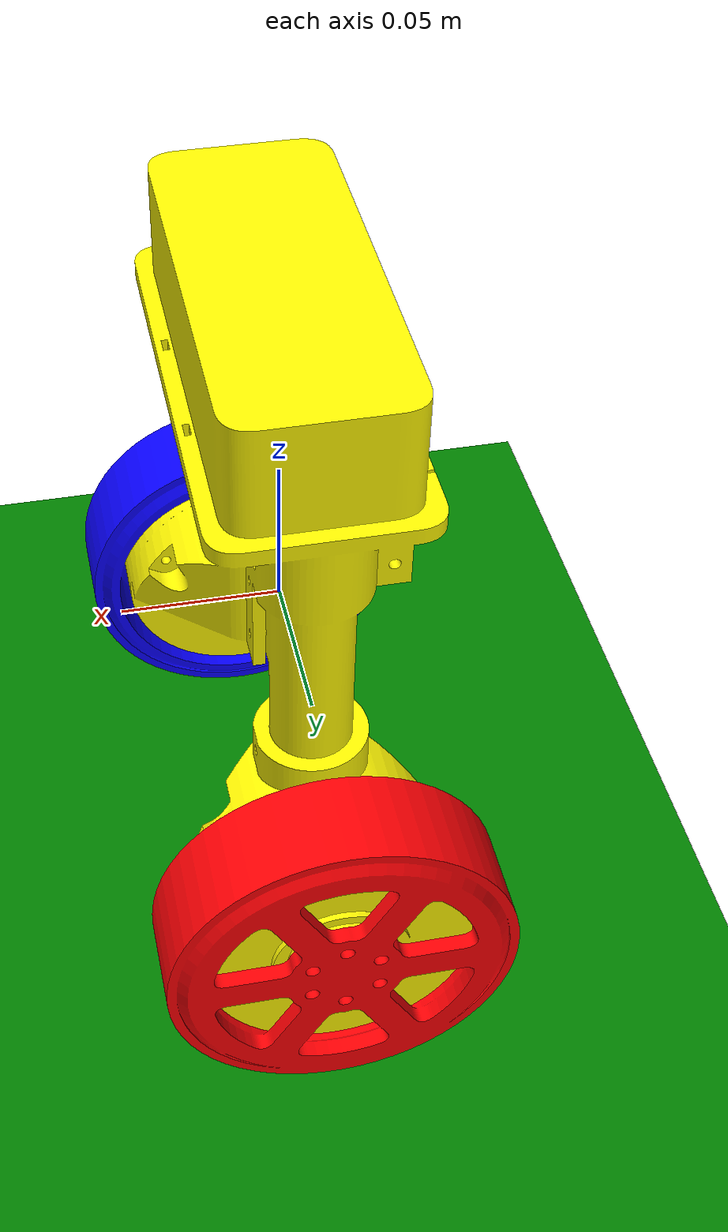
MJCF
<?xml version='1.0' encoding='UTF-8'?>
<mujoco model="InvertPendulam">
  <compiler angle="radian" />

  <asset>
    <mesh name="InvertPendualm_mainBody_CoG_origin_binary" content_type="model/stl"
      file="../meshes/InvertPendualm_mainBody_CoG_origin_binary.stl" />
    <mesh name="InvertPendulam_wheel_left_center_origin_binary" content_type="model/stl"
      file="../meshes/InvertPendulam_wheel_left_center_origin_binary.stl" />
    <mesh name="InvertPendulam_wheel_right_center_origin_binary" content_type="model/stl"
      file="../meshes/InvertPendulam_wheel_right_center_origin_binary.stl" />
  </asset>

  <worldbody>

    <body name="base_link">
      <freejoint />
      <inertial pos="0 0 0" mass="0" diaginertia="0.01 0.01 0.01" />

      <body name="InvertPendualm_mainBody_CoG_origin" quat="0.707388 0 0 0.706825">
        <inertial pos="0 0 0" quat="0.707106 -0.000303441 0.000289314 0.707108" mass="1.1515"
          diaginertia="0.0121364 0.0071955 0.00569466" />
        <geom type="mesh" rgba="1 0.969 0 1" mesh="InvertPendualm_mainBody_CoG_origin_binary" />

        <body name="InvertPendulam_wheel_left_center_origin" pos="0 0 -0.0605">
          <inertial pos="0 0 0" mass="0.0636012" diaginertia="0.00014101 7.681e-05 7.681e-05" />
          <joint
            name="InvertPendualm_mainBody_CoG_origin_to_InvertPendulam_wheel_left_center_origin"
            pos="0 0 0" axis="1 0 0" actuatorfrcrange="-12 12" frictionloss="0.1" damping="0.01" />
          <geom type="mesh" rgba="1 0 0.016 1" mesh="InvertPendulam_wheel_left_center_origin_binary"
            friction="0.5 0.005 0.0001" />

        </body>
        <body name="InvertPendulam_wheel_right_center_origin" pos="0 0 -0.0605">
          <inertial pos="0 0 0" mass="0.0636012" diaginertia="0.00014101 7.681e-05 7.681e-05" />
          <joint
            name="InvertPendualm_mainBody_CoG_origin_to_InvertPendulam_wheel_right_center_origin"
            pos="0 0 0" axis="1 0 0" actuatorfrcrange="-12 12" frictionloss="0.1" damping="0.01" />
          <geom type="mesh" rgba="0.031 0 1 1"
            mesh="InvertPendulam_wheel_right_center_origin_binary" friction="0.5 0.005 0.0001" />
        </body>

      </body>

    </body>

    <geom type="plane" size="20 20 0.1" pos="0 0 -0.115" rgba="0.0 0.5 0.0 1" />

  </worldbody>

  <actuator>

    <motor name="left_wheel_motor"
      joint="InvertPendualm_mainBody_CoG_origin_to_InvertPendulam_wheel_left_center_origin" gear="1"
      ctrlrange="-12 12" ctrllimited="true" />

    <motor name="right_wheel_motor"
      joint="InvertPendualm_mainBody_CoG_origin_to_InvertPendulam_wheel_right_center_origin"
      gear="1" ctrlrange="-12 12" ctrllimited="true" />

  </actuator>

</mujoco>
